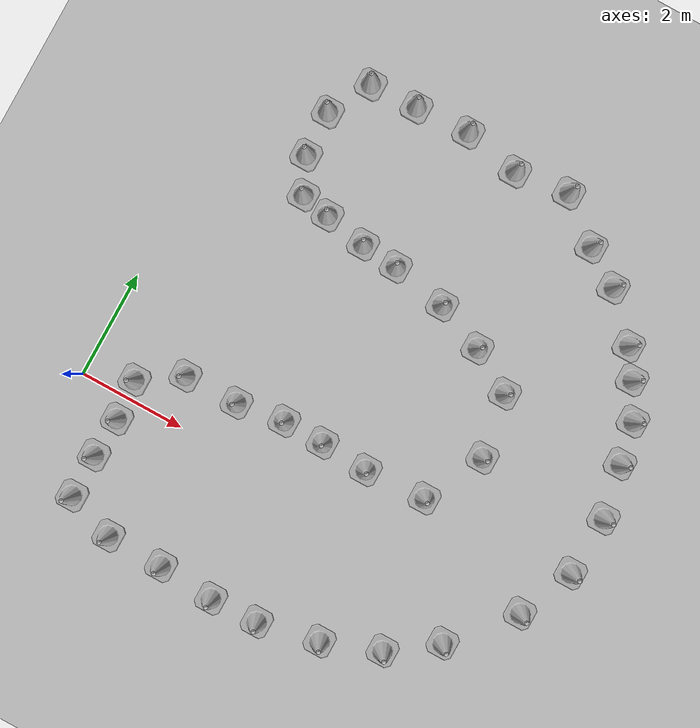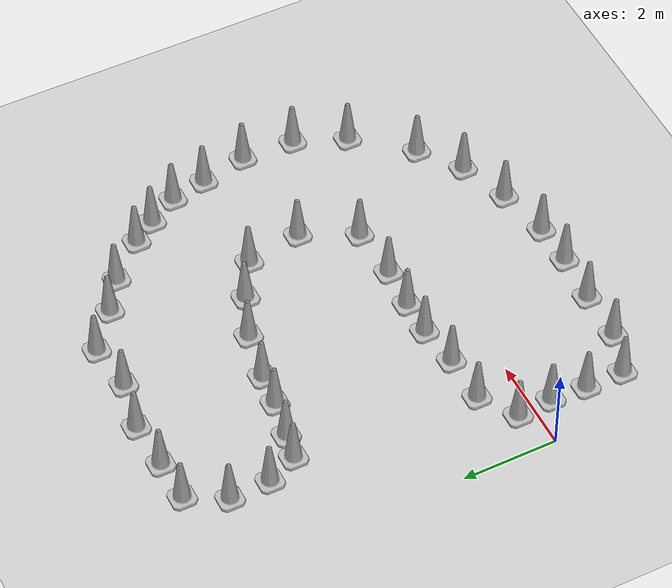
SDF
<sdf version="1.7">
 <world name="default">
  <light name="sun" type="directional">
   <pose>0 0 10 0 -0 0</pose>
   <diffuse>0.8 0.8 0.8 1</diffuse>
   <specular>0.2 0.2 0.2 1</specular>
   <attenuation>
    <range>1000</range>
    <constant>0.9</constant>
    <linear>0.01</linear>
    <quadratic>0.001</quadratic>
   </attenuation>
   <direction>-0.5 0.1 -0.9</direction>
   <spot><inner_angle>0</inner_angle><outer_angle>0</outer_angle><falloff>0</falloff></spot>
  </light>
  <model name="ground_plane">
   <static>1</static>
   <link name="link">
    <collision name="collision">
     <geometry><plane><normal>0 0 1</normal><size>100 100</size></plane></geometry>
     <surface>
      <contact><collide_bitmask>65535</collide_bitmask></contact>
      <friction><ode><mu>100</mu><mu2>50</mu2></ode></friction>
     </surface>
    </collision>
    <visual name="visual">
     <cast_shadows>0</cast_shadows>
     <geometry><plane><normal>0 0 1</normal><size>100 100</size></plane></geometry>
     <material>
      <script><uri>file://media/materials/scripts/gazebo.material</uri><name>Gazebo/Grey</name></script>
     </material>
    </visual>
   </link>
  </model>
  <gravity>0 0 -9.8</gravity>
  <magnetic_field>6e-06 2.3e-05 -4.2e-05</magnetic_field>
  <atmosphere type="adiabatic"/>
  <physics type="ode">
   <max_step_size>0.001</max_step_size>
   <real_time_factor>1</real_time_factor>
   <real_time_update_rate>1000</real_time_update_rate>
  </physics>
  <scene><ambient>0.4 0.4 0.4 1</ambient><background>0.7 0.7 0.7 1</background><shadows>1</shadows></scene>
  <spherical_coordinates>
   <surface_model>EARTH_WGS84</surface_model>
   <latitude_deg>0</latitude_deg>
   <longitude_deg>0</longitude_deg>
   <elevation>0</elevation>
   <heading_deg>0</heading_deg>
  </spherical_coordinates>
  <model name="Construction Cone">
   <link name="link">
    <collision name="collision">
     <geometry>
      <mesh><scale>10 10 10</scale><uri>model://construction_cone/meshes/construction_cone.dae</uri></mesh>
     </geometry>
    </collision>
    <visual name="visual">
     <geometry>
      <mesh><scale>10 10 10</scale><uri>model://construction_cone/meshes/construction_cone.dae</uri></mesh>
     </geometry>
    </visual>
    <inertial>
     <inertia><ixx>1</ixx><ixy>0</ixy><ixz>0</ixz><iyy>1</iyy><iyz>0</iyz><izz>1</izz></inertia>
     <mass>1</mass>
    </inertial>
   </link>
   <pose>1.79541 -2.30637 -0 -0 -0 -0</pose>
  </model>
  <model name="Construction Cone_clone">
   <link name="link">
    <collision name="collision">
     <geometry>
      <mesh><scale>10 10 10</scale><uri>model://construction_cone/meshes/construction_cone.dae</uri></mesh>
     </geometry>
    </collision>
    <visual name="visual">
     <geometry>
      <mesh><scale>10 10 10</scale><uri>model://construction_cone/meshes/construction_cone.dae</uri></mesh>
     </geometry>
    </visual>
    <inertial>
     <inertia><ixx>1</ixx><ixy>0</ixy><ixz>0</ixz><iyy>1</iyy><iyz>0</iyz><izz>1</izz></inertia>
     <mass>1</mass>
    </inertial>
   </link>
   <pose>2.87423 -2.32431 0 -0 -0 -0</pose>
  </model>
  <model name="Construction Cone_clone_0">
   <link name="link">
    <collision name="collision">
     <geometry>
      <mesh><scale>10 10 10</scale><uri>model://construction_cone/meshes/construction_cone.dae</uri></mesh>
     </geometry>
    </collision>
    <visual name="visual">
     <geometry>
      <mesh><scale>10 10 10</scale><uri>model://construction_cone/meshes/construction_cone.dae</uri></mesh>
     </geometry>
    </visual>
    <inertial>
     <inertia><ixx>1</ixx><ixy>0</ixy><ixz>0</ixz><iyy>1</iyy><iyz>0</iyz><izz>1</izz></inertia>
     <mass>1</mass>
    </inertial>
   </link>
   <pose>3.93765 -2.40141 0 -0 -0 -0</pose>
  </model>
  <model name="Construction Cone_clone_1">
   <link name="link">
    <collision name="collision">
     <geometry>
      <mesh><scale>10 10 10</scale><uri>model://construction_cone/meshes/construction_cone.dae</uri></mesh>
     </geometry>
    </collision>
    <visual name="visual">
     <geometry>
      <mesh><scale>10 10 10</scale><uri>model://construction_cone/meshes/construction_cone.dae</uri></mesh>
     </geometry>
    </visual>
    <inertial>
     <inertia><ixx>1</ixx><ixy>0</ixy><ixz>0</ixz><iyy>1</iyy><iyz>0</iyz><izz>1</izz></inertia>
     <mass>1</mass>
    </inertial>
   </link>
   <pose>4.8528 -2.37211 0 -0 -0 -0</pose>
  </model>
  <model name="Construction Cone_0">
   <link name="link">
    <collision name="collision">
     <geometry>
      <mesh><scale>10 10 10</scale><uri>model://construction_cone/meshes/construction_cone.dae</uri></mesh>
     </geometry>
    </collision>
    <visual name="visual">
     <geometry>
      <mesh><scale>10 10 10</scale><uri>model://construction_cone/meshes/construction_cone.dae</uri></mesh>
     </geometry>
    </visual>
    <inertial>
     <inertia><ixx>1</ixx><ixy>0</ixy><ixz>0</ixz><iyy>1</iyy><iyz>0</iyz><izz>1</izz></inertia>
     <mass>1</mass>
    </inertial>
   </link>
   <pose>1.61695 0.853427 -0 0 1e-06 0</pose>
  </model>
  <model name="Construction Cone_clone_2">
   <link name="link">
    <collision name="collision">
     <geometry>
      <mesh><scale>10 10 10</scale><uri>model://construction_cone/meshes/construction_cone.dae</uri></mesh>
     </geometry>
    </collision>
    <visual name="visual">
     <geometry>
      <mesh><scale>10 10 10</scale><uri>model://construction_cone/meshes/construction_cone.dae</uri></mesh>
     </geometry>
    </visual>
    <inertial>
     <inertia><ixx>1</ixx><ixy>0</ixy><ixz>0</ixz><iyy>1</iyy><iyz>0</iyz><izz>1</izz></inertia>
     <mass>1</mass>
    </inertial>
   </link>
   <pose>2.64736 0.87236 0 -0 -0 -0</pose>
  </model>
  <model name="Construction Cone_clone_3">
   <link name="link">
    <collision name="collision">
     <geometry>
      <mesh><scale>10 10 10</scale><uri>model://construction_cone/meshes/construction_cone.dae</uri></mesh>
     </geometry>
    </collision>
    <visual name="visual">
     <geometry>
      <mesh><scale>10 10 10</scale><uri>model://construction_cone/meshes/construction_cone.dae</uri></mesh>
     </geometry>
    </visual>
    <inertial>
     <inertia><ixx>1</ixx><ixy>0</ixy><ixz>0</ixz><iyy>1</iyy><iyz>0</iyz><izz>1</izz></inertia>
     <mass>1</mass>
    </inertial>
   </link>
   <pose>3.54808 1 0 -0 -0 -0</pose>
  </model>
  <model name="Construction Cone_clone_4">
   <link name="link">
    <collision name="collision">
     <geometry>
      <mesh><scale>10 10 10</scale><uri>model://construction_cone/meshes/construction_cone.dae</uri></mesh>
     </geometry>
    </collision>
    <visual name="visual">
     <geometry>
      <mesh><scale>10 10 10</scale><uri>model://construction_cone/meshes/construction_cone.dae</uri></mesh>
     </geometry>
    </visual>
    <inertial>
     <inertia><ixx>1</ixx><ixy>0</ixy><ixz>0</ixz><iyy>1</iyy><iyz>0</iyz><izz>1</izz></inertia>
     <mass>1</mass>
    </inertial>
   </link>
   <pose>4.33463 0.989211 -0 0 -1e-06 0</pose>
  </model>
  <model name="Construction Cone_clone_5">
   <link name="link">
    <collision name="collision">
     <geometry>
      <mesh><scale>10 10 10</scale><uri>model://construction_cone/meshes/construction_cone.dae</uri></mesh>
     </geometry>
    </collision>
    <visual name="visual">
     <geometry>
      <mesh><scale>10 10 10</scale><uri>model://construction_cone/meshes/construction_cone.dae</uri></mesh>
     </geometry>
    </visual>
    <inertial>
     <inertia><ixx>1</ixx><ixy>0</ixy><ixz>0</ixz><iyy>1</iyy><iyz>0</iyz><izz>1</izz></inertia>
     <mass>1</mass>
    </inertial>
   </link>
   <pose>5.24365 0.938095 -0 0 -0 0</pose>
  </model>
  <model name="Construction Cone_clone_6">
   <link name="link">
    <collision name="collision">
     <geometry>
      <mesh><scale>10 10 10</scale><uri>model://construction_cone/meshes/construction_cone.dae</uri></mesh>
     </geometry>
    </collision>
    <visual name="visual">
     <geometry>
      <mesh><scale>10 10 10</scale><uri>model://construction_cone/meshes/construction_cone.dae</uri></mesh>
     </geometry>
    </visual>
    <inertial>
     <inertia><ixx>1</ixx><ixy>0</ixy><ixz>0</ixz><iyy>1</iyy><iyz>0</iyz><izz>1</izz></inertia>
     <mass>1</mass>
    </inertial>
   </link>
   <pose>6.40651 1.00164 -0 0 -1e-06 0</pose>
  </model>
  <model name="Construction Cone_clone_7">
   <link name="link">
    <collision name="collision">
     <geometry>
      <mesh><scale>10 10 10</scale><uri>model://construction_cone/meshes/construction_cone.dae</uri></mesh>
     </geometry>
    </collision>
    <visual name="visual">
     <geometry>
      <mesh><scale>10 10 10</scale><uri>model://construction_cone/meshes/construction_cone.dae</uri></mesh>
     </geometry>
    </visual>
    <inertial>
     <inertia><ixx>1</ixx><ixy>0</ixy><ixz>0</ixz><iyy>1</iyy><iyz>0</iyz><izz>1</izz></inertia>
     <mass>1</mass>
    </inertial>
   </link>
   <pose>6.00205 -2.13375 0 -0 -0 -0</pose>
  </model>
  <model name="Construction Cone_clone_8">
   <link name="link">
    <collision name="collision">
     <geometry>
      <mesh><scale>10 10 10</scale><uri>model://construction_cone/meshes/construction_cone.dae</uri></mesh>
     </geometry>
    </collision>
    <visual name="visual">
     <geometry>
      <mesh><scale>10 10 10</scale><uri>model://construction_cone/meshes/construction_cone.dae</uri></mesh>
     </geometry>
    </visual>
    <inertial>
     <inertia><ixx>1</ixx><ixy>0</ixy><ixz>0</ixz><iyy>1</iyy><iyz>0</iyz><izz>1</izz></inertia>
     <mass>1</mass>
    </inertial>
   </link>
   <pose>6.9617 2.13459 0 -0 -0 -0</pose>
  </model>
  <model name="Construction Cone_clone_9">
   <link name="link">
    <collision name="collision">
     <geometry>
      <mesh><scale>10 10 10</scale><uri>model://construction_cone/meshes/construction_cone.dae</uri></mesh>
     </geometry>
    </collision>
    <visual name="visual">
     <geometry>
      <mesh><scale>10 10 10</scale><uri>model://construction_cone/meshes/construction_cone.dae</uri></mesh>
     </geometry>
    </visual>
    <inertial>
     <inertia><ixx>1</ixx><ixy>0</ixy><ixz>0</ixz><iyy>1</iyy><iyz>0</iyz><izz>1</izz></inertia>
     <mass>1</mass>
    </inertial>
   </link>
   <pose>6.75732 3.32865 -0 0 -0 0</pose>
  </model>
  <model name="Construction Cone_clone_10">
   <link name="link">
    <collision name="collision">
     <geometry>
      <mesh><scale>10 10 10</scale><uri>model://construction_cone/meshes/construction_cone.dae</uri></mesh>
     </geometry>
    </collision>
    <visual name="visual">
     <geometry>
      <mesh><scale>10 10 10</scale><uri>model://construction_cone/meshes/construction_cone.dae</uri></mesh>
     </geometry>
    </visual>
    <inertial>
     <inertia><ixx>1</ixx><ixy>0</ixy><ixz>0</ixz><iyy>1</iyy><iyz>0</iyz><izz>1</izz></inertia>
     <mass>1</mass>
    </inertial>
   </link>
   <pose>5.94081 3.80029 -0 0 -1e-06 0</pose>
  </model>
  <model name="Construction Cone_clone_11">
   <link name="link">
    <collision name="collision">
     <geometry>
      <mesh><scale>10 10 10</scale><uri>model://construction_cone/meshes/construction_cone.dae</uri></mesh>
     </geometry>
    </collision>
    <visual name="visual">
     <geometry>
      <mesh><scale>10 10 10</scale><uri>model://construction_cone/meshes/construction_cone.dae</uri></mesh>
     </geometry>
    </visual>
    <inertial>
     <inertia><ixx>1</ixx><ixy>0</ixy><ixz>0</ixz><iyy>1</iyy><iyz>0</iyz><izz>1</izz></inertia>
     <mass>1</mass>
    </inertial>
   </link>
   <pose>5.01638 4.17002 -1e-05 0 -0 0</pose>
  </model>
  <model name="Construction Cone_clone_12">
   <link name="link">
    <collision name="collision">
     <geometry>
      <mesh><scale>10 10 10</scale><uri>model://construction_cone/meshes/construction_cone.dae</uri></mesh>
     </geometry>
    </collision>
    <visual name="visual">
     <geometry>
      <mesh><scale>10 10 10</scale><uri>model://construction_cone/meshes/construction_cone.dae</uri></mesh>
     </geometry>
    </visual>
    <inertial>
     <inertia><ixx>1</ixx><ixy>0</ixy><ixz>0</ixz><iyy>1</iyy><iyz>0</iyz><izz>1</izz></inertia>
     <mass>1</mass>
    </inertial>
   </link>
   <pose>3.25678 4.43747 0 -0 -0 -0</pose>
  </model>
  <model name="Construction Cone_clone_13">
   <link name="link">
    <collision name="collision">
     <geometry>
      <mesh><scale>10 10 10</scale><uri>model://construction_cone/meshes/construction_cone.dae</uri></mesh>
     </geometry>
    </collision>
    <visual name="visual">
     <geometry>
      <mesh><scale>10 10 10</scale><uri>model://construction_cone/meshes/construction_cone.dae</uri></mesh>
     </geometry>
    </visual>
    <inertial>
     <inertia><ixx>1</ixx><ixy>0</ixy><ixz>0</ixz><iyy>1</iyy><iyz>0</iyz><izz>1</izz></inertia>
     <mass>1</mass>
    </inertial>
   </link>
   <pose>1.90224 4.69397 -0 0 -1e-06 0</pose>
  </model>
  <model name="Construction Cone_clone_14">
   <link name="link">
    <collision name="collision">
     <geometry>
      <mesh><scale>10 10 10</scale><uri>model://construction_cone/meshes/construction_cone.dae</uri></mesh>
     </geometry>
    </collision>
    <visual name="visual">
     <geometry>
      <mesh><scale>10 10 10</scale><uri>model://construction_cone/meshes/construction_cone.dae</uri></mesh>
     </geometry>
    </visual>
    <inertial>
     <inertia><ixx>1</ixx><ixy>0</ixy><ixz>0</ixz><iyy>1</iyy><iyz>0</iyz><izz>1</izz></inertia>
     <mass>1</mass>
    </inertial>
   </link>
   <pose>3.9608 4.37022 0 -0 -0 -0</pose>
  </model>
  <model name="Construction Cone_clone_15">
   <link name="link">
    <collision name="collision">
     <geometry>
      <mesh><scale>10 10 10</scale><uri>model://construction_cone/meshes/construction_cone.dae</uri></mesh>
     </geometry>
    </collision>
    <visual name="visual">
     <geometry>
      <mesh><scale>10 10 10</scale><uri>model://construction_cone/meshes/construction_cone.dae</uri></mesh>
     </geometry>
    </visual>
    <inertial>
     <inertia><ixx>1</ixx><ixy>0</ixy><ixz>0</ixz><iyy>1</iyy><iyz>0</iyz><izz>1</izz></inertia>
     <mass>1</mass>
    </inertial>
   </link>
   <pose>2.45219 4.5841 -0 0 -1e-06 0</pose>
  </model>
  <model name="Construction Cone_clone_16">
   <link name="link">
    <collision name="collision">
     <geometry>
      <mesh><scale>10 10 10</scale><uri>model://construction_cone/meshes/construction_cone.dae</uri></mesh>
     </geometry>
    </collision>
    <visual name="visual">
     <geometry>
      <mesh><scale>10 10 10</scale><uri>model://construction_cone/meshes/construction_cone.dae</uri></mesh>
     </geometry>
    </visual>
    <inertial>
     <inertia><ixx>1</ixx><ixy>0</ixy><ixz>0</ixz><iyy>1</iyy><iyz>0</iyz><izz>1</izz></inertia>
     <mass>1</mass>
    </inertial>
   </link>
   <pose>7.06717 -1.7413 -1e-05 -0 -0 -0</pose>
  </model>
  <model name="Construction Cone_clone_17">
   <link name="link">
    <collision name="collision">
     <geometry>
      <mesh><scale>10 10 10</scale><uri>model://construction_cone/meshes/construction_cone.dae</uri></mesh>
     </geometry>
    </collision>
    <visual name="visual">
     <geometry>
      <mesh><scale>10 10 10</scale><uri>model://construction_cone/meshes/construction_cone.dae</uri></mesh>
     </geometry>
    </visual>
    <inertial>
     <inertia><ixx>1</ixx><ixy>0</ixy><ixz>0</ixz><iyy>1</iyy><iyz>0</iyz><izz>1</izz></inertia>
     <mass>1</mass>
    </inertial>
   </link>
   <pose>7.93966 -1.10529 -0 -0 -0 -0</pose>
  </model>
  <model name="Construction Cone_clone_18">
   <link name="link">
    <collision name="collision">
     <geometry>
      <mesh><scale>10 10 10</scale><uri>model://construction_cone/meshes/construction_cone.dae</uri></mesh>
     </geometry>
    </collision>
    <visual name="visual">
     <geometry>
      <mesh><scale>10 10 10</scale><uri>model://construction_cone/meshes/construction_cone.dae</uri></mesh>
     </geometry>
    </visual>
    <inertial>
     <inertia><ixx>1</ixx><ixy>0</ixy><ixz>0</ixz><iyy>1</iyy><iyz>0</iyz><izz>1</izz></inertia>
     <mass>1</mass>
    </inertial>
   </link>
   <pose>8.8917 0.029258 -0 -0 -0 -0</pose>
  </model>
  <model name="Construction Cone_clone_19">
   <link name="link">
    <collision name="collision">
     <geometry>
      <mesh><scale>10 10 10</scale><uri>model://construction_cone/meshes/construction_cone.dae</uri></mesh>
     </geometry>
    </collision>
    <visual name="visual">
     <geometry>
      <mesh><scale>10 10 10</scale><uri>model://construction_cone/meshes/construction_cone.dae</uri></mesh>
     </geometry>
    </visual>
    <inertial>
     <inertia><ixx>1</ixx><ixy>0</ixy><ixz>0</ixz><iyy>1</iyy><iyz>0</iyz><izz>1</izz></inertia>
     <mass>1</mass>
    </inertial>
   </link>
   <pose>9.33585 1.09486 -0 0 -1e-06 0</pose>
  </model>
  <model name="Construction Cone_clone_20">
   <link name="link">
    <collision name="collision">
     <geometry>
      <mesh><scale>10 10 10</scale><uri>model://construction_cone/meshes/construction_cone.dae</uri></mesh>
     </geometry>
    </collision>
    <visual name="visual">
     <geometry>
      <mesh><scale>10 10 10</scale><uri>model://construction_cone/meshes/construction_cone.dae</uri></mesh>
     </geometry>
    </visual>
    <inertial>
     <inertia><ixx>1</ixx><ixy>0</ixy><ixz>0</ixz><iyy>1</iyy><iyz>0</iyz><izz>1</izz></inertia>
     <mass>1</mass>
    </inertial>
   </link>
   <pose>9.37767 2.22964 -0 0 -0 0</pose>
  </model>
  <model name="Construction Cone_clone_21">
   <link name="link">
    <collision name="collision">
     <geometry>
      <mesh><scale>10 10 10</scale><uri>model://construction_cone/meshes/construction_cone.dae</uri></mesh>
     </geometry>
    </collision>
    <visual name="visual">
     <geometry>
      <mesh><scale>10 10 10</scale><uri>model://construction_cone/meshes/construction_cone.dae</uri></mesh>
     </geometry>
    </visual>
    <inertial>
     <inertia><ixx>1</ixx><ixy>0</ixy><ixz>0</ixz><iyy>1</iyy><iyz>0</iyz><izz>1</izz></inertia>
     <mass>1</mass>
    </inertial>
   </link>
   <pose>9 4 0 -0 -0 -0</pose>
  </model>
  <model name="Construction Cone_clone_22">
   <link name="link">
    <collision name="collision">
     <geometry>
      <mesh><scale>10 10 10</scale><uri>model://construction_cone/meshes/construction_cone.dae</uri></mesh>
     </geometry>
    </collision>
    <visual name="visual">
     <geometry>
      <mesh><scale>10 10 10</scale><uri>model://construction_cone/meshes/construction_cone.dae</uri></mesh>
     </geometry>
    </visual>
    <inertial>
     <inertia><ixx>1</ixx><ixy>0</ixy><ixz>0</ixz><iyy>1</iyy><iyz>0</iyz><izz>1</izz></inertia>
     <mass>1</mass>
    </inertial>
   </link>
   <pose>8.28302 5.14318 -0 0 -0 0</pose>
  </model>
  <model name="Construction Cone_clone_23">
   <link name="link">
    <collision name="collision">
     <geometry>
      <mesh><scale>10 10 10</scale><uri>model://construction_cone/meshes/construction_cone.dae</uri></mesh>
     </geometry>
    </collision>
    <visual name="visual">
     <geometry>
      <mesh><scale>10 10 10</scale><uri>model://construction_cone/meshes/construction_cone.dae</uri></mesh>
     </geometry>
    </visual>
    <inertial>
     <inertia><ixx>1</ixx><ixy>0</ixy><ixz>0</ixz><iyy>1</iyy><iyz>0</iyz><izz>1</izz></inertia>
     <mass>1</mass>
    </inertial>
   </link>
   <pose>7.53917 5.918 -0 0 -1e-06 0</pose>
  </model>
  <model name="Construction Cone_clone_24">
   <link name="link">
    <collision name="collision">
     <geometry>
      <mesh><scale>10 10 10</scale><uri>model://construction_cone/meshes/construction_cone.dae</uri></mesh>
     </geometry>
    </collision>
    <visual name="visual">
     <geometry>
      <mesh><scale>10 10 10</scale><uri>model://construction_cone/meshes/construction_cone.dae</uri></mesh>
     </geometry>
    </visual>
    <inertial>
     <inertia><ixx>1</ixx><ixy>0</ixy><ixz>0</ixz><iyy>1</iyy><iyz>0</iyz><izz>1</izz></inertia>
     <mass>1</mass>
    </inertial>
   </link>
   <pose>6.84491 6.36604 -0 0 -1e-06 0</pose>
  </model>
  <model name="Construction Cone_clone_25">
   <link name="link">
    <collision name="collision">
     <geometry>
      <mesh><scale>10 10 10</scale><uri>model://construction_cone/meshes/construction_cone.dae</uri></mesh>
     </geometry>
    </collision>
    <visual name="visual">
     <geometry>
      <mesh><scale>10 10 10</scale><uri>model://construction_cone/meshes/construction_cone.dae</uri></mesh>
     </geometry>
    </visual>
    <inertial>
     <inertia><ixx>1</ixx><ixy>0</ixy><ixz>0</ixz><iyy>1</iyy><iyz>0</iyz><izz>1</izz></inertia>
     <mass>1</mass>
    </inertial>
   </link>
   <pose>6.03062 7.011 -0 0 -1e-06 0</pose>
  </model>
  <model name="Construction Cone_clone_26">
   <link name="link">
    <collision name="collision">
     <geometry>
      <mesh><scale>10 10 10</scale><uri>model://construction_cone/meshes/construction_cone.dae</uri></mesh>
     </geometry>
    </collision>
    <visual name="visual">
     <geometry>
      <mesh><scale>10 10 10</scale><uri>model://construction_cone/meshes/construction_cone.dae</uri></mesh>
     </geometry>
    </visual>
    <inertial>
     <inertia><ixx>1</ixx><ixy>0</ixy><ixz>0</ixz><iyy>1</iyy><iyz>0</iyz><izz>1</izz></inertia>
     <mass>1</mass>
    </inertial>
   </link>
   <pose>5.00186 6.88444 -0 0 -1e-06 0</pose>
  </model>
  <model name="Construction Cone_clone_27">
   <link name="link">
    <collision name="collision">
     <geometry>
      <mesh><scale>10 10 10</scale><uri>model://construction_cone/meshes/construction_cone.dae</uri></mesh>
     </geometry>
    </collision>
    <visual name="visual">
     <geometry>
      <mesh><scale>10 10 10</scale><uri>model://construction_cone/meshes/construction_cone.dae</uri></mesh>
     </geometry>
    </visual>
    <inertial>
     <inertia><ixx>1</ixx><ixy>0</ixy><ixz>0</ixz><iyy>1</iyy><iyz>0</iyz><izz>1</izz></inertia>
     <mass>1</mass>
    </inertial>
   </link>
   <pose>3.93711 7.09096 -1e-05 0 -0 0</pose>
  </model>
  <model name="Construction Cone_clone_28">
   <link name="link">
    <collision name="collision">
     <geometry>
      <mesh><scale>10 10 10</scale><uri>model://construction_cone/meshes/construction_cone.dae</uri></mesh>
     </geometry>
    </collision>
    <visual name="visual">
     <geometry>
      <mesh><scale>10 10 10</scale><uri>model://construction_cone/meshes/construction_cone.dae</uri></mesh>
     </geometry>
    </visual>
    <inertial>
     <inertia><ixx>1</ixx><ixy>0</ixy><ixz>0</ixz><iyy>1</iyy><iyz>0</iyz><izz>1</izz></inertia>
     <mass>1</mass>
    </inertial>
   </link>
   <pose>2.90863 7.03671 -1e-05 -0 -0 -0</pose>
  </model>
  <model name="Construction Cone_clone_29">
   <link name="link">
    <collision name="collision">
     <geometry>
      <mesh><scale>10 10 10</scale><uri>model://construction_cone/meshes/construction_cone.dae</uri></mesh>
     </geometry>
    </collision>
    <visual name="visual">
     <geometry>
      <mesh><scale>10 10 10</scale><uri>model://construction_cone/meshes/construction_cone.dae</uri></mesh>
     </geometry>
    </visual>
    <inertial>
     <inertia><ixx>1</ixx><ixy>0</ixy><ixz>0</ixz><iyy>1</iyy><iyz>0</iyz><izz>1</izz></inertia>
     <mass>1</mass>
    </inertial>
   </link>
   <pose>2 7 -0 0 -1e-06 0</pose>
  </model>
  <model name="Construction Cone_clone_30">
   <link name="link">
    <collision name="collision">
     <geometry>
      <mesh><scale>10 10 10</scale><uri>model://construction_cone/meshes/construction_cone.dae</uri></mesh>
     </geometry>
    </collision>
    <visual name="visual">
     <geometry>
      <mesh><scale>10 10 10</scale><uri>model://construction_cone/meshes/construction_cone.dae</uri></mesh>
     </geometry>
    </visual>
    <inertial>
     <inertia><ixx>1</ixx><ixy>0</ixy><ixz>0</ixz><iyy>1</iyy><iyz>0</iyz><izz>1</izz></inertia>
     <mass>1</mass>
    </inertial>
   </link>
   <pose>0.881962 -1.99531 -0 0 -1e-06 0</pose>
  </model>
  <model name="Construction Cone_clone_31">
   <link name="link">
    <collision name="collision">
     <geometry>
      <mesh><scale>10 10 10</scale><uri>model://construction_cone/meshes/construction_cone.dae</uri></mesh>
     </geometry>
    </collision>
    <visual name="visual">
     <geometry>
      <mesh><scale>10 10 10</scale><uri>model://construction_cone/meshes/construction_cone.dae</uri></mesh>
     </geometry>
    </visual>
    <inertial>
     <inertia><ixx>1</ixx><ixy>0</ixy><ixz>0</ixz><iyy>1</iyy><iyz>0</iyz><izz>1</izz></inertia>
     <mass>1</mass>
    </inertial>
   </link>
   <pose>0.875963 -1.17332 -0 0 -1e-06 0</pose>
  </model>
  <model name="Construction Cone_clone_32">
   <link name="link">
    <collision name="collision">
     <geometry>
      <mesh><scale>10 10 10</scale><uri>model://construction_cone/meshes/construction_cone.dae</uri></mesh>
     </geometry>
    </collision>
    <visual name="visual">
     <geometry>
      <mesh><scale>10 10 10</scale><uri>model://construction_cone/meshes/construction_cone.dae</uri></mesh>
     </geometry>
    </visual>
    <inertial>
     <inertia><ixx>1</ixx><ixy>0</ixy><ixz>0</ixz><iyy>1</iyy><iyz>0</iyz><izz>1</izz></inertia>
     <mass>1</mass>
    </inertial>
   </link>
   <pose>0.919701 -0.410279 -0 0 -1e-06 0</pose>
  </model>
  <model name="Construction Cone_clone_33">
   <link name="link">
    <collision name="collision">
     <geometry>
      <mesh><scale>10 10 10</scale><uri>model://construction_cone/meshes/construction_cone.dae</uri></mesh>
     </geometry>
    </collision>
    <visual name="visual">
     <geometry>
      <mesh><scale>10 10 10</scale><uri>model://construction_cone/meshes/construction_cone.dae</uri></mesh>
     </geometry>
    </visual>
    <inertial>
     <inertia><ixx>1</ixx><ixy>0</ixy><ixz>0</ixz><iyy>1</iyy><iyz>0</iyz><izz>1</izz></inertia>
     <mass>1</mass>
    </inertial>
   </link>
   <pose>0.856744 0.352073 -1e-05 -1e-06 0 0</pose>
  </model>
  <model name="Construction Cone_clone_34">
   <link name="link">
    <collision name="collision">
     <geometry>
      <mesh><scale>10 10 10</scale><uri>model://construction_cone/meshes/construction_cone.dae</uri></mesh>
     </geometry>
    </collision>
    <visual name="visual">
     <geometry>
      <mesh><scale>10 10 10</scale><uri>model://construction_cone/meshes/construction_cone.dae</uri></mesh>
     </geometry>
    </visual>
    <inertial>
     <inertia><ixx>1</ixx><ixy>0</ixy><ixz>0</ixz><iyy>1</iyy><iyz>0</iyz><izz>1</izz></inertia>
     <mass>1</mass>
    </inertial>
   </link>
   <pose>1.59844 5.34077 -0 0 -1e-06 0</pose>
  </model>
  <model name="Construction Cone_clone_35">
   <link name="link">
    <collision name="collision">
     <geometry>
      <mesh><scale>10 10 10</scale><uri>model://construction_cone/meshes/construction_cone.dae</uri></mesh>
     </geometry>
    </collision>
    <visual name="visual">
     <geometry>
      <mesh><scale>10 10 10</scale><uri>model://construction_cone/meshes/construction_cone.dae</uri></mesh>
     </geometry>
    </visual>
    <inertial>
     <inertia><ixx>1</ixx><ixy>0</ixy><ixz>0</ixz><iyy>1</iyy><iyz>0</iyz><izz>1</izz></inertia>
     <mass>1</mass>
    </inertial>
   </link>
   <pose>1.56627 6.20023 -0 0 -0 0</pose>
  </model>
  <model name="Construction Cone_clone_36">
   <link name="link">
    <collision name="collision">
     <geometry>
      <mesh><scale>10 10 10</scale><uri>model://construction_cone/meshes/construction_cone.dae</uri></mesh>
     </geometry>
    </collision>
    <visual name="visual">
     <geometry>
      <mesh><scale>10 10 10</scale><uri>model://construction_cone/meshes/construction_cone.dae</uri></mesh>
     </geometry>
    </visual>
    <inertial>
     <inertia><ixx>1</ixx><ixy>0</ixy><ixz>0</ixz><iyy>1</iyy><iyz>0</iyz><izz>1</izz></inertia>
     <mass>1</mass>
    </inertial>
   </link>
   <pose>9.16439 3.22679 -0 0 -1e-06 0</pose>
  </model>
  <model name="Construction Cone_clone_37">
   <link name="link">
    <collision name="collision">
     <geometry>
      <mesh><scale>10 10 10</scale><uri>model://construction_cone/meshes/construction_cone.dae</uri></mesh>
     </geometry>
    </collision>
    <visual name="visual">
     <geometry>
      <mesh><scale>10 10 10</scale><uri>model://construction_cone/meshes/construction_cone.dae</uri></mesh>
     </geometry>
    </visual>
    <inertial>
     <inertia><ixx>1</ixx><ixy>0</ixy><ixz>0</ixz><iyy>1</iyy><iyz>0</iyz><izz>1</izz></inertia>
     <mass>1</mass>
    </inertial>
   </link>
   <pose>8.62936 4.63986 -0 0 -1e-06 0</pose>
  </model>
 </world>
</sdf>
